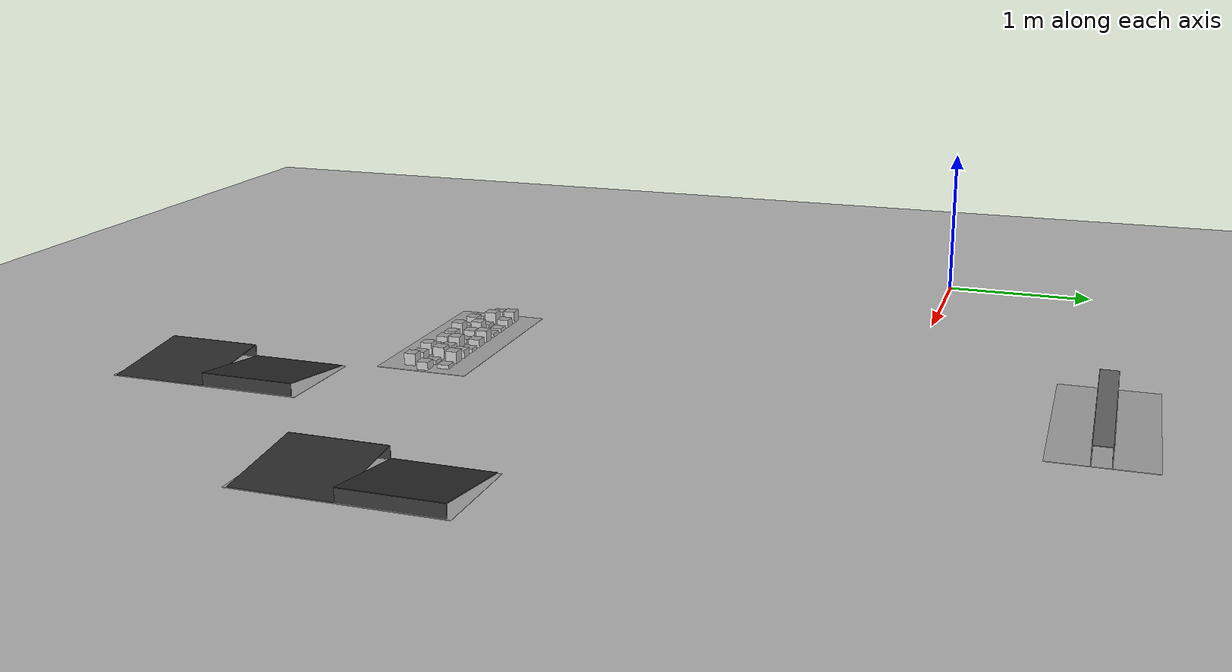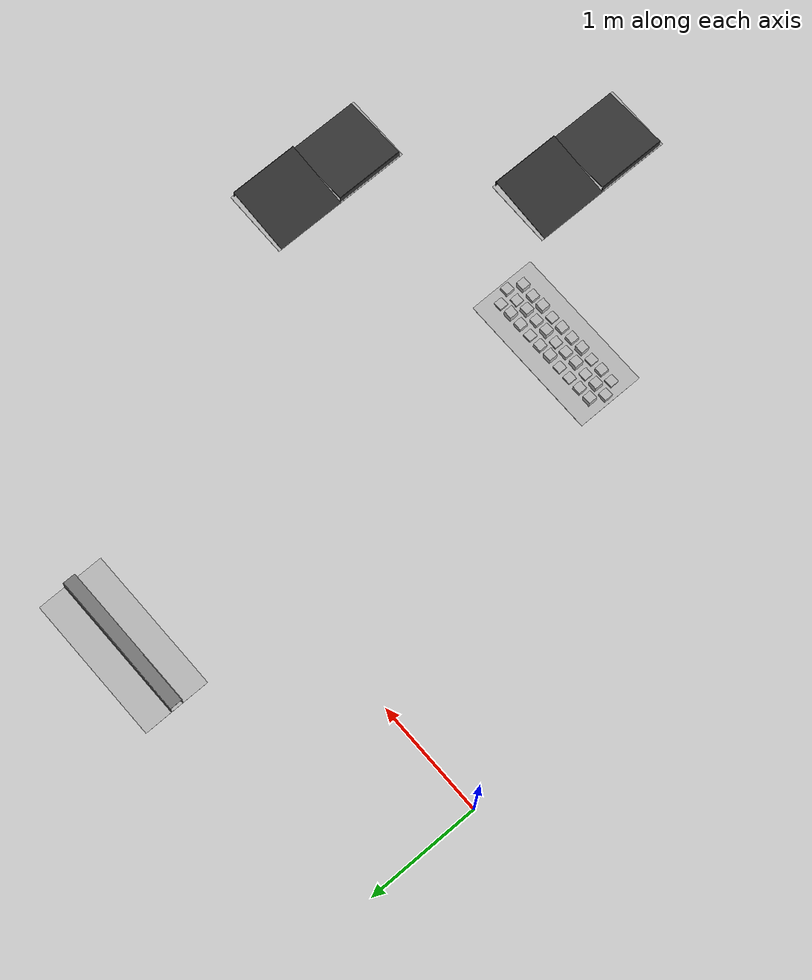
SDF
<sdf version="1.6">
 <world name="default">
  <light name="sun" type="directional">
   <pose>0 0 10 0 -0 0</pose>
   <diffuse>0.8 0.8 0.8 1</diffuse>
   <specular>0.1 0.1 0.1 1</specular>
   <attenuation>
    <range>1000</range>
    <constant>0.9</constant>
    <linear>0.01</linear>
    <quadratic>0.001</quadratic>
   </attenuation>
   <direction>-0.5 0.5 -1</direction>
  </light>
  <model name="ground_plane">
   <static>1</static>
   <link name="link">
    <collision name="collision">
     <geometry><plane><normal>0 0 1</normal><size>100 100</size></plane></geometry>
     <surface><friction><ode><mu>100</mu><mu2>50</mu2></ode></friction></surface>
    </collision>
    <visual name="visual">
     <cast_shadows>0</cast_shadows>
     <geometry><plane><normal>0 0 1</normal><size>100 100</size></plane></geometry>
     <material>
      <script><uri>file://media/materials/scripts/gazebo.material</uri><name>Gazebo/Grey</name></script>
     </material>
    </visual>
   </link>
  </model>
  <gravity>0 0 -9.8</gravity>
  <magnetic_field>6e-06 2.3e-05 -4.2e-05</magnetic_field>
  <atmosphere type="adiabatic"/>
  <physics name="default_physics" default="0" type="ode">
   <max_step_size>0.001</max_step_size>
   <real_time_factor>1</real_time_factor>
   <real_time_update_rate>1000</real_time_update_rate>
  </physics>
  <scene><ambient>0.4 0.4 0.4 1</ambient><background>0.7 0.7 0.7 1</background><shadows>1</shadows></scene>
  <spherical_coordinates>
   <surface_model>EARTH_WGS84</surface_model>
   <latitude_deg>0</latitude_deg>
   <longitude_deg>0</longitude_deg>
   <elevation>0</elevation>
   <heading_deg>0</heading_deg>
  </spherical_coordinates>
  <model name="frc2016_roughterrain">
   <static>1</static>
   <link name="link">
    <visual name="platform">
     <pose>0 0 0.08269 0 -0 0</pose>
     <geometry><box><size>1.27 0.5969 0.003175</size></box></geometry>
    </visual>
    <collision name="platform">
     <pose>0 0 0.08269 0 -0 0</pose>
     <geometry><box><size>1.27 0.5969 0.003175</size></box></geometry>
    </collision>
    <visual name="row1_block1_sm">
     <pose>0.51435 0.1143 0.09698 0 -0 0</pose>
     <geometry><box><size>0.0762 0.0762 0.0254</size></box></geometry>
    </visual>
    <collision name="row1_block1_sm">
     <pose>0.51435 0.1143 0.09698 0 -0 0</pose>
     <geometry><box><size>0.0762 0.0762 0.0254</size></box></geometry>
    </collision>
    <visual name="row1_block2_lg">
     <pose>0.40005 0.1143 0.12238 0 -0 0</pose>
     <geometry><box><size>0.0762 0.0762 0.0762</size></box></geometry>
    </visual>
    <collision name="row1_block2_lg">
     <pose>0.40005 0.1143 0.12238 0 -0 0</pose>
     <geometry><box><size>0.0762 0.0762 0.0762</size></box></geometry>
    </collision>
    <visual name="row1_block3_md">
     <pose>0.28575 0.1143 0.10968 0 -0 0</pose>
     <geometry><box><size>0.0762 0.0762 0.0508</size></box></geometry>
    </visual>
    <collision name="row1_block3_md">
     <pose>0.28575 0.1143 0.10968 0 -0 0</pose>
     <geometry><box><size>0.0762 0.0762 0.0508</size></box></geometry>
    </collision>
    <visual name="row1_block4_sm">
     <pose>0.17145 0.1143 0.09698 0 -0 0</pose>
     <geometry><box><size>0.0762 0.0762 0.0254</size></box></geometry>
    </visual>
    <collision name="row1_block4_sm">
     <pose>0.17145 0.1143 0.09698 0 -0 0</pose>
     <geometry><box><size>0.0762 0.0762 0.0254</size></box></geometry>
    </collision>
    <visual name="row1_block5_md">
     <pose>0.05715 0.1143 0.10968 0 -0 0</pose>
     <geometry><box><size>0.0762 0.0762 0.0508</size></box></geometry>
    </visual>
    <collision name="row1_block5_md">
     <pose>0.05715 0.1143 0.10968 0 -0 0</pose>
     <geometry><box><size>0.0762 0.0762 0.0508</size></box></geometry>
    </collision>
    <visual name="row1_block6_lg">
     <pose>-0.05715 0.1143 0.12238 0 -0 0</pose>
     <geometry><box><size>0.0762 0.0762 0.0762</size></box></geometry>
    </visual>
    <collision name="row1_block6_lg">
     <pose>-0.05715 0.1143 0.12238 0 -0 0</pose>
     <geometry><box><size>0.0762 0.0762 0.0762</size></box></geometry>
    </collision>
    <visual name="row1_block7_sm">
     <pose>-0.17145 0.1143 0.09698 0 -0 0</pose>
     <geometry><box><size>0.0762 0.0762 0.0254</size></box></geometry>
    </visual>
    <collision name="row1_block7_sm">
     <pose>-0.17145 0.1143 0.09698 0 -0 0</pose>
     <geometry><box><size>0.0762 0.0762 0.0254</size></box></geometry>
    </collision>
    <visual name="row1_block8_sm">
     <pose>-0.28575 0.1143 0.09698 0 -0 0</pose>
     <geometry><box><size>0.0762 0.0762 0.0254</size></box></geometry>
    </visual>
    <collision name="row1_block8_sm">
     <pose>-0.28575 0.1143 0.09698 0 -0 0</pose>
     <geometry><box><size>0.0762 0.0762 0.0254</size></box></geometry>
    </collision>
    <visual name="row1_block9_md">
     <pose>-0.40005 0.1143 0.10968 0 -0 0</pose>
     <geometry><box><size>0.0762 0.0762 0.0508</size></box></geometry>
    </visual>
    <collision name="row1_block9_md">
     <pose>-0.40005 0.1143 0.10968 0 -0 0</pose>
     <geometry><box><size>0.0762 0.0762 0.0508</size></box></geometry>
    </collision>
    <visual name="row1_block10_lg">
     <pose>-0.51435 0.1143 0.12238 0 -0 0</pose>
     <geometry><box><size>0.0762 0.0762 0.0762</size></box></geometry>
    </visual>
    <collision name="row1_block10_lg">
     <pose>-0.51435 0.1143 0.12238 0 -0 0</pose>
     <geometry><box><size>0.0762 0.0762 0.0762</size></box></geometry>
    </collision>
    <visual name="row2_block1_md">
     <pose>0.5715 0 0.10968 0 -0 0</pose>
     <geometry><box><size>0.0762 0.0762 0.0508</size></box></geometry>
    </visual>
    <collision name="row2_block1_md">
     <pose>0.5715 0 0.10968 0 -0 0</pose>
     <geometry><box><size>0.0762 0.0762 0.0508</size></box></geometry>
    </collision>
    <visual name="row2_block2_sm">
     <pose>0.4572 0 0.09698 0 -0 0</pose>
     <geometry><box><size>0.0762 0.0762 0.0254</size></box></geometry>
    </visual>
    <collision name="row2_block2_sm">
     <pose>0.4572 0 0.09698 0 -0 0</pose>
     <geometry><box><size>0.0762 0.0762 0.0254</size></box></geometry>
    </collision>
    <visual name="row2_block3_lg">
     <pose>0.3429 0 0.12238 0 -0 0</pose>
     <geometry><box><size>0.0762 0.0762 0.0762</size></box></geometry>
    </visual>
    <collision name="row2_block3_lg">
     <pose>0.3429 0 0.12238 0 -0 0</pose>
     <geometry><box><size>0.0762 0.0762 0.0762</size></box></geometry>
    </collision>
    <visual name="row2_block4_md">
     <pose>0.2286 0 0.10968 0 -0 0</pose>
     <geometry><box><size>0.0762 0.0762 0.0508</size></box></geometry>
    </visual>
    <collision name="row2_block4_md">
     <pose>0.2286 0 0.10968 0 -0 0</pose>
     <geometry><box><size>0.0762 0.0762 0.0508</size></box></geometry>
    </collision>
    <visual name="row2_block5_lg">
     <pose>0.1143 0 0.12238 0 -0 0</pose>
     <geometry><box><size>0.0762 0.0762 0.0762</size></box></geometry>
    </visual>
    <collision name="row2_block5_lg">
     <pose>0.1143 0 0.12238 0 -0 0</pose>
     <geometry><box><size>0.0762 0.0762 0.0762</size></box></geometry>
    </collision>
    <visual name="row2_block6_sm">
     <pose>0 0 0.09698 0 -0 0</pose>
     <geometry><box><size>0.0762 0.0762 0.0254</size></box></geometry>
    </visual>
    <collision name="row2_block6_sm">
     <pose>0 0 0.09698 0 -0 0</pose>
     <geometry><box><size>0.0762 0.0762 0.0254</size></box></geometry>
    </collision>
    <visual name="row2_block7_md">
     <pose>-0.1143 0 0.10968 0 -0 0</pose>
     <geometry><box><size>0.0762 0.0762 0.0508</size></box></geometry>
    </visual>
    <collision name="row2_block7_md">
     <pose>-0.1143 0 0.10968 0 -0 0</pose>
     <geometry><box><size>0.0762 0.0762 0.0508</size></box></geometry>
    </collision>
    <visual name="row2_block8_lg">
     <pose>-0.2286 0 0.12238 0 -0 0</pose>
     <geometry><box><size>0.0762 0.0762 0.0762</size></box></geometry>
    </visual>
    <collision name="row2_block8_lg">
     <pose>-0.2286 0 0.12238 0 -0 0</pose>
     <geometry><box><size>0.0762 0.0762 0.0762</size></box></geometry>
    </collision>
    <visual name="row2_block9_sm">
     <pose>-0.3429 0 0.09698 0 -0 0</pose>
     <geometry><box><size>0.0762 0.0762 0.0254</size></box></geometry>
    </visual>
    <collision name="row2_block9_sm">
     <pose>-0.3429 0 0.09698 0 -0 0</pose>
     <geometry><box><size>0.0762 0.0762 0.0254</size></box></geometry>
    </collision>
    <visual name="row2_block10_lg">
     <pose>-0.4572 0 0.12238 0 -0 0</pose>
     <geometry><box><size>0.0762 0.0762 0.0762</size></box></geometry>
    </visual>
    <collision name="row2_block10_lg">
     <pose>-0.4572 0 0.12238 0 -0 0</pose>
     <geometry><box><size>0.0762 0.0762 0.0762</size></box></geometry>
    </collision>
    <visual name="row2_block11_md">
     <pose>-0.5715 0 0.10968 0 -0 0</pose>
     <geometry><box><size>0.0762 0.0762 0.0508</size></box></geometry>
    </visual>
    <collision name="row2_block11_md">
     <pose>-0.5715 0 0.10968 0 -0 0</pose>
     <geometry><box><size>0.0762 0.0762 0.0508</size></box></geometry>
    </collision>
    <visual name="row3_block1_lg">
     <pose>0.51435 -0.1143 0.12238 0 -0 0</pose>
     <geometry><box><size>0.0762 0.0762 0.0762</size></box></geometry>
    </visual>
    <collision name="row3_block1_lg">
     <pose>0.51435 -0.1143 0.12238 0 -0 0</pose>
     <geometry><box><size>0.0762 0.0762 0.0762</size></box></geometry>
    </collision>
    <visual name="row3_block2_md">
     <pose>0.40005 -0.1143 0.10968 0 -0 0</pose>
     <geometry><box><size>0.0762 0.0762 0.0508</size></box></geometry>
    </visual>
    <collision name="row3_block2_md">
     <pose>0.40005 -0.1143 0.10968 0 -0 0</pose>
     <geometry><box><size>0.0762 0.0762 0.0508</size></box></geometry>
    </collision>
    <visual name="row3_block3_lg">
     <pose>0.28575 -0.1143 0.12238 0 -0 0</pose>
     <geometry><box><size>0.0762 0.0762 0.0762</size></box></geometry>
    </visual>
    <collision name="row3_block3_lg">
     <pose>0.28575 -0.1143 0.12238 0 -0 0</pose>
     <geometry><box><size>0.0762 0.0762 0.0762</size></box></geometry>
    </collision>
    <visual name="row3_block4_sm">
     <pose>0.17145 -0.1143 0.09698 0 -0 0</pose>
     <geometry><box><size>0.0762 0.0762 0.0254</size></box></geometry>
    </visual>
    <collision name="row3_block4_sm">
     <pose>0.17145 -0.1143 0.09698 0 -0 0</pose>
     <geometry><box><size>0.0762 0.0762 0.0254</size></box></geometry>
    </collision>
    <visual name="row3_block5_md">
     <pose>0.05715 -0.1143 0.10968 0 -0 0</pose>
     <geometry><box><size>0.0762 0.0762 0.0508</size></box></geometry>
    </visual>
    <collision name="row3_block5_md">
     <pose>0.05715 -0.1143 0.10968 0 -0 0</pose>
     <geometry><box><size>0.0762 0.0762 0.0508</size></box></geometry>
    </collision>
    <visual name="row3_block6_md">
     <pose>-0.05715 -0.1143 0.10968 0 -0 0</pose>
     <geometry><box><size>0.0762 0.0762 0.0508</size></box></geometry>
    </visual>
    <collision name="row3_block6_md">
     <pose>-0.05715 -0.1143 0.10968 0 -0 0</pose>
     <geometry><box><size>0.0762 0.0762 0.0508</size></box></geometry>
    </collision>
    <visual name="row3_block7_lg">
     <pose>-0.17145 -0.1143 0.12238 0 -0 0</pose>
     <geometry><box><size>0.0762 0.0762 0.0762</size></box></geometry>
    </visual>
    <collision name="row3_block7_lg">
     <pose>-0.17145 -0.1143 0.12238 0 -0 0</pose>
     <geometry><box><size>0.0762 0.0762 0.0762</size></box></geometry>
    </collision>
    <visual name="row3_block8_sm">
     <pose>-0.28575 -0.1143 0.09698 0 -0 0</pose>
     <geometry><box><size>0.0762 0.0762 0.0254</size></box></geometry>
    </visual>
    <collision name="row3_block8_sm">
     <pose>-0.28575 -0.1143 0.09698 0 -0 0</pose>
     <geometry><box><size>0.0762 0.0762 0.0254</size></box></geometry>
    </collision>
    <visual name="row3_block9_md">
     <pose>-0.40005 -0.1143 0.10968 0 -0 0</pose>
     <geometry><box><size>0.0762 0.0762 0.0508</size></box></geometry>
    </visual>
    <collision name="row3_block9_md">
     <pose>-0.40005 -0.1143 0.10968 0 -0 0</pose>
     <geometry><box><size>0.0762 0.0762 0.0508</size></box></geometry>
    </collision>
    <visual name="row3_block10_sm">
     <pose>-0.51435 -0.1143 0.09698 0 -0 0</pose>
     <geometry><box><size>0.0762 0.0762 0.0254</size></box></geometry>
    </visual>
    <collision name="row3_block10_sm">
     <pose>-0.51435 -0.1143 0.09698 0 -0 0</pose>
     <geometry><box><size>0.0762 0.0762 0.0254</size></box></geometry>
    </collision>
   </link>
   <pose>2.33059 -2.88566 -0.073536 0 -0 0</pose>
  </model>
  <model name="frc2016_rockwall">
   <static>1</static>
   <link name="link">
    <inertial>
     <mass>10</mass>
     <pose>0 0 0.08974 0 -0 0</pose>
     <inertia><ixx>0.327091</ixx><ixy>0</ixy><ixz>0</ixz><iyy>1.37417</iyy><iyz>0</iyz><izz>1.64109</izz></inertia>
    </inertial>
    <visual name="platform">
     <pose>0 0 0.06432 0 -0 0</pose>
     <geometry><box><size>1.27 0.5969 0.003175</size></box></geometry>
    </visual>
    <collision name="platform">
     <pose>0 0 0.06432 0 -0 0</pose>
     <geometry><box><size>1.27 0.5969 0.003175</size></box></geometry>
    </collision>
    <visual name="up1">
     <pose>0 0.05166 0.12537 0 -0 0</pose>
     <geometry><box><size>1.27 0.00462 0.11892</size></box></geometry>
     <material><ambient>0.46 0.46 0.46 1</ambient><diffuse>0.46 0.46 0.46 1</diffuse></material>
    </visual>
    <collision name="up1">
     <pose>0 0.05166 0.12537 0 -0 0</pose>
     <geometry><box><size>1.27 0.00462 0.11892</size></box></geometry>
    </collision>
    <visual name="up2">
     <pose>0 -0.05801 0.12537 0 -0 0</pose>
     <geometry><box><size>1.27 0.00462 0.11892</size></box></geometry>
     <material><ambient>0.46 0.46 0.46 1</ambient><diffuse>0.46 0.46 0.46 1</diffuse></material>
    </visual>
    <collision name="up2">
     <pose>0 -0.05801 0.12537 0 -0 0</pose>
     <geometry><box><size>1.27 0.00462 0.11892</size></box></geometry>
    </collision>
    <visual name="top">
     <pose>0 -0.00249 0.18252 0 -0 0</pose>
     <geometry><box><size>1.27 0.1143 0.00462</size></box></geometry>
     <material><ambient>0.46 0.46 0.46 1</ambient><diffuse>0.46 0.46 0.46 1</diffuse></material>
    </visual>
    <collision name="top">
     <pose>0 -0.00249 0.18252 0 -0 0</pose>
     <geometry><box><size>1.27 0.1143 0.00462</size></box></geometry>
    </collision>
   </link>
   <pose>2.65119 1.18304 -0.045911 0 -0 0</pose>
  </model>
  <model name="frc2016_ramparts">
   <static>1</static>
   <link name="link">
    <visual name="platform">
     <pose>0 0 0.06967 0 -0 0</pose>
     <geometry><box><size>1.27 0.5969 0.003175</size></box></geometry>
    </visual>
    <collision name="platform">
     <pose>0 0 0.06967 0 -0 0</pose>
     <geometry><box><size>1.27 0.5969 0.003175</size></box></geometry>
    </collision>
    <visual name="ramp1">
     <pose>0.30472 0.00588 0.1109 -0.13 0 0</pose>
     <geometry><box><size>0.60957 0.588891 0.00462</size></box></geometry>
     <material><ambient>0.2 0.2 0.2 1</ambient><diffuse>0.2 0.2 0.2 1</diffuse></material>
    </visual>
    <collision name="ramp1">
     <pose>0.30472 0.00588 0.1109 -0.13 0 0</pose>
     <geometry><box><size>0.60957 0.588891 0.00462</size></box></geometry>
    </collision>
    <visual name="up1">
     <pose>0.30472 -0.28806 0.11072 0 -0 0</pose>
     <geometry><box><size>0.60957 0.00462 0.07872</size></box></geometry>
     <material><ambient>0.2 0.2 0.2 1</ambient><diffuse>0.2 0.2 0.2 1</diffuse></material>
    </visual>
    <collision name="up1">
     <pose>0.30472 -0.28806 0.11072 0 -0 0</pose>
     <geometry><box><size>0.60957 0.00462 0.07872</size></box></geometry>
    </collision>
    <visual name="ramp2">
     <pose>-0.30472 -0.00619 0.1109 0.13 -0 0</pose>
     <geometry><box><size>0.60957 0.588891 0.00462</size></box></geometry>
     <material><ambient>0.2 0.2 0.2 1</ambient><diffuse>0.2 0.2 0.2 1</diffuse></material>
    </visual>
    <collision name="ramp2">
     <pose>-0.30472 -0.00619 0.1109 0.13 -0 0</pose>
     <geometry><box><size>0.60957 0.588891 0.00462</size></box></geometry>
    </collision>
    <visual name="up2">
     <pose>-0.30472 0.28806 0.11072 0 -0 0</pose>
     <geometry><box><size>0.60957 0.00462 0.07872</size></box></geometry>
     <material><ambient>0.2 0.2 0.2 1</ambient><diffuse>0.2 0.2 0.2 1</diffuse></material>
    </visual>
    <collision name="up2">
     <pose>-0.30472 0.28806 0.11072 0 -0 0</pose>
     <geometry><box><size>0.60957 0.00462 0.07872</size></box></geometry>
    </collision>
   </link>
   <pose>3.3272 -4.00572 -0.057421 0 -0 1.56465</pose>
  </model>
  <model name="frc2016_ramparts_clone">
   <static>1</static>
   <link name="link">
    <visual name="platform">
     <pose>0 0 0.06967 0 -0 0</pose>
     <geometry><box><size>1.27 0.5969 0.003175</size></box></geometry>
    </visual>
    <collision name="platform">
     <pose>0 0 0.06967 0 -0 0</pose>
     <geometry><box><size>1.27 0.5969 0.003175</size></box></geometry>
    </collision>
    <visual name="ramp1">
     <pose>0.30472 0.00588 0.1109 -0.13 0 0</pose>
     <geometry><box><size>0.60957 0.588891 0.00462</size></box></geometry>
     <material><ambient>0.2 0.2 0.2 1</ambient><diffuse>0.2 0.2 0.2 1</diffuse></material>
    </visual>
    <collision name="ramp1">
     <pose>0.30472 0.00588 0.1109 -0.13 0 0</pose>
     <geometry><box><size>0.60957 0.588891 0.00462</size></box></geometry>
    </collision>
    <visual name="up1">
     <pose>0.30472 -0.28806 0.11072 0 -0 0</pose>
     <geometry><box><size>0.60957 0.00462 0.07872</size></box></geometry>
     <material><ambient>0.2 0.2 0.2 1</ambient><diffuse>0.2 0.2 0.2 1</diffuse></material>
    </visual>
    <collision name="up1">
     <pose>0.30472 -0.28806 0.11072 0 -0 0</pose>
     <geometry><box><size>0.60957 0.00462 0.07872</size></box></geometry>
    </collision>
    <visual name="ramp2">
     <pose>-0.30472 -0.00619 0.1109 0.13 -0 0</pose>
     <geometry><box><size>0.60957 0.588891 0.00462</size></box></geometry>
     <material><ambient>0.2 0.2 0.2 1</ambient><diffuse>0.2 0.2 0.2 1</diffuse></material>
    </visual>
    <collision name="ramp2">
     <pose>-0.30472 -0.00619 0.1109 0.13 -0 0</pose>
     <geometry><box><size>0.60957 0.588891 0.00462</size></box></geometry>
    </collision>
    <visual name="up2">
     <pose>-0.30472 0.28806 0.11072 0 -0 0</pose>
     <geometry><box><size>0.60957 0.00462 0.07872</size></box></geometry>
     <material><ambient>0.2 0.2 0.2 1</ambient><diffuse>0.2 0.2 0.2 1</diffuse></material>
    </visual>
    <collision name="up2">
     <pose>-0.30472 0.28806 0.11072 0 -0 0</pose>
     <geometry><box><size>0.60957 0.00462 0.07872</size></box></geometry>
    </collision>
   </link>
   <pose>4.60059 -2.38037 -0.056889 0 -0 1.56465</pose>
  </model>
 </world>
</sdf>
